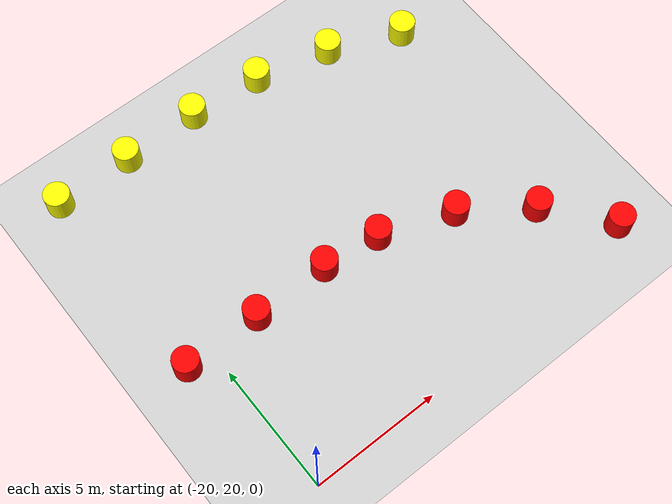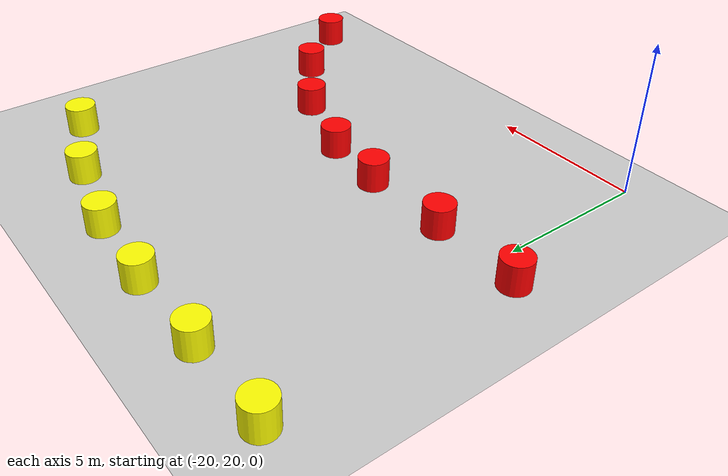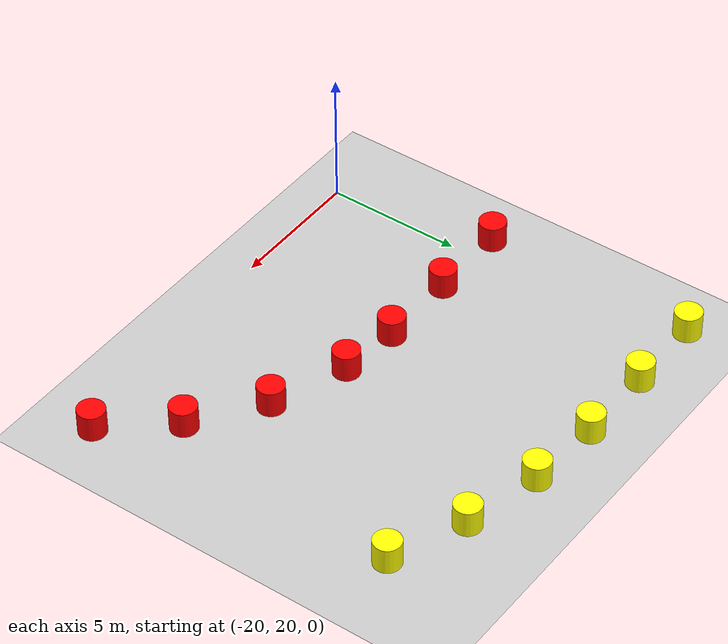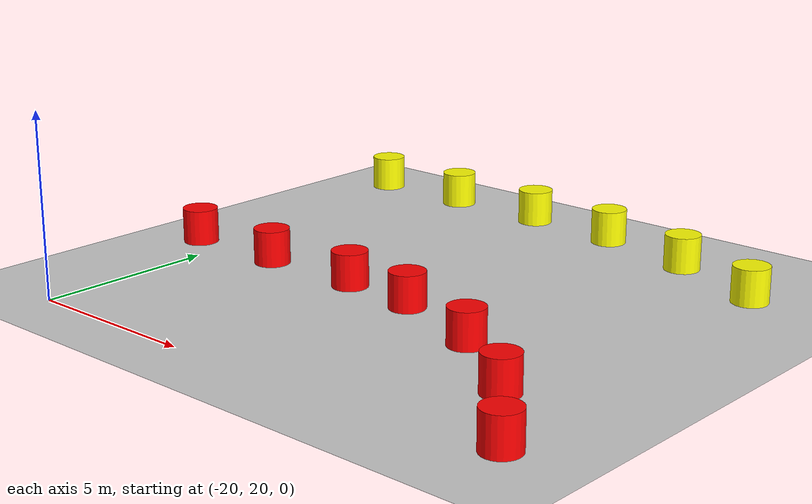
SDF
<sdf version="1.9">
 <world name="empty">
  <model name="ground_plane">
   <static>true</static>
   <link name="link">
    <collision name="collision">
     <geometry><plane><normal>0 0 1</normal><size>1000 1000</size></plane></geometry>
    </collision>
    <visual name="visual">
     <geometry><plane><normal>0 0 1</normal><size>1000 1000</size></plane></geometry>
     <material>
      <ambient>0.8 0.8 0.8 1</ambient>
      <diffuse>0.8 0.8 0.8 1</diffuse>
      <specular>0.8 0.8 0.8 1</specular>
     </material>
    </visual>
    <inertial>
     <mass>1</mass>
     <inertia><ixx>1</ixx><ixy>0</ixy><ixz>0</ixz><iyy>1</iyy><iyz>0</iyz><izz>1</izz></inertia>
    </inertial>
   </link>
  </model>
  <model name="red_cone_8">
   <pose>-5.5961928635129645 20.7068740427449 0.5 0 -0 0</pose>
   <link name="cylinder_link">
    <inertial>
     <inertia>
      <ixx>0.14580000000000001</ixx>
      <ixy>0</ixy>
      <ixz>0</ixz>
      <iyy>0.14580000000000001</iyy>
      <iyz>0</iyz>
      <izz>0.125</izz>
     </inertia>
     <mass>1</mass>
    </inertial>
    <collision name="cylinder_collision">
     <geometry><cylinder><radius>0.5</radius><length>1</length></cylinder></geometry>
    </collision>
    <visual name="cylinder_visual">
     <geometry><cylinder><radius>0.5</radius><length>1</length></cylinder></geometry>
     <material><ambient>1 0 0 1</ambient><diffuse>1 0 0 1</diffuse><specular>1 1 1 1</specular></material>
    </visual>
   </link>
   <static>false</static>
  </model>
  <model name="red_cone_9">
   <pose>-7.480956215316949 23.02894641681081 0.5 0 -0 0</pose>
   <link name="cylinder_link">
    <inertial>
     <inertia>
      <ixx>0.14580000000000001</ixx>
      <ixy>0</ixy>
      <ixz>0</ixz>
      <iyy>0.14580000000000001</iyy>
      <iyz>0</iyz>
      <izz>0.125</izz>
     </inertia>
     <mass>1</mass>
    </inertial>
    <collision name="cylinder_collision">
     <geometry><cylinder><radius>0.5</radius><length>1</length></cylinder></geometry>
    </collision>
    <visual name="cylinder_visual">
     <geometry><cylinder><radius>0.5</radius><length>1</length></cylinder></geometry>
     <material><ambient>1 0 0 1</ambient><diffuse>1 0 0 1</diffuse><specular>1 1 1 1</specular></material>
    </visual>
   </link>
   <static>false</static>
  </model>
  <model name="red_cone_10">
   <pose>-9.921529334501002 24.757516881854016 0.5 0 -0 0</pose>
   <link name="cylinder_link">
    <inertial>
     <inertia>
      <ixx>0.14580000000000001</ixx>
      <ixy>0</ixy>
      <ixz>0</ixz>
      <iyy>0.14580000000000001</iyy>
      <iyz>0</iyz>
      <izz>0.125</izz>
     </inertia>
     <mass>1</mass>
    </inertial>
    <collision name="cylinder_collision">
     <geometry><cylinder><radius>0.5</radius><length>1</length></cylinder></geometry>
    </collision>
    <visual name="cylinder_visual">
     <geometry><cylinder><radius>0.5</radius><length>1</length></cylinder></geometry>
     <material><ambient>1 0 0 1</ambient><diffuse>1 0 0 1</diffuse><specular>1 1 1 1</specular></material>
    </visual>
   </link>
   <static>false</static>
  </model>
  <model name="red_cone_11">
   <pose>-12.737504390429667 25.7648090376316 0.5 0 -0 0</pose>
   <link name="cylinder_link">
    <inertial>
     <inertia>
      <ixx>0.14580000000000001</ixx>
      <ixy>0</ixy>
      <ixz>0</ixz>
      <iyy>0.14580000000000001</iyy>
      <iyz>0</iyz>
      <izz>0.125</izz>
     </inertia>
     <mass>1</mass>
    </inertial>
    <collision name="cylinder_collision">
     <geometry><cylinder><radius>0.5</radius><length>1</length></cylinder></geometry>
    </collision>
    <visual name="cylinder_visual">
     <geometry><cylinder><radius>0.5</radius><length>1</length></cylinder></geometry>
     <material><ambient>1 0 0 1</ambient><diffuse>1 0 0 1</diffuse><specular>1 1 1 1</specular></material>
    </visual>
   </link>
   <static>false</static>
  </model>
  <model name="red_cone_12">
   <pose>-15.0 26.0 0.5 0 -0 0</pose>
   <link name="cylinder_link">
    <inertial>
     <inertia>
      <ixx>0.14580000000000001</ixx>
      <ixy>0</ixy>
      <ixz>0</ixz>
      <iyy>0.14580000000000001</iyy>
      <iyz>0</iyz>
      <izz>0.125</izz>
     </inertia>
     <mass>1</mass>
    </inertial>
    <collision name="cylinder_collision">
     <geometry><cylinder><radius>0.5</radius><length>1</length></cylinder></geometry>
    </collision>
    <visual name="cylinder_visual">
     <geometry><cylinder><radius>0.5</radius><length>1</length></cylinder></geometry>
     <material><ambient>1 0 0 1</ambient><diffuse>1 0 0 1</diffuse><specular>1 1 1 1</specular></material>
    </visual>
   </link>
   <static>false</static>
  </model>
  <model name="red_cone_13">
   <pose>-18.0 26.0 0.5 0 -0 0</pose>
   <link name="cylinder_link">
    <inertial>
     <inertia>
      <ixx>0.14580000000000001</ixx>
      <ixy>0</ixy>
      <ixz>0</ixz>
      <iyy>0.14580000000000001</iyy>
      <iyz>0</iyz>
      <izz>0.125</izz>
     </inertia>
     <mass>1</mass>
    </inertial>
    <collision name="cylinder_collision">
     <geometry><cylinder><radius>0.5</radius><length>1</length></cylinder></geometry>
    </collision>
    <visual name="cylinder_visual">
     <geometry><cylinder><radius>0.5</radius><length>1</length></cylinder></geometry>
     <material><ambient>1 0 0 1</ambient><diffuse>1 0 0 1</diffuse><specular>1 1 1 1</specular></material>
    </visual>
   </link>
   <static>false</static>
  </model>
  <model name="red_cone_14">
   <pose>-21.0 26.0 0.5 0 -0 0</pose>
   <link name="cylinder_link">
    <inertial>
     <inertia>
      <ixx>0.14580000000000001</ixx>
      <ixy>0</ixy>
      <ixz>0</ixz>
      <iyy>0.14580000000000001</iyy>
      <iyz>0</iyz>
      <izz>0.125</izz>
     </inertia>
     <mass>1</mass>
    </inertial>
    <collision name="cylinder_collision">
     <geometry><cylinder><radius>0.5</radius><length>1</length></cylinder></geometry>
    </collision>
    <visual name="cylinder_visual">
     <geometry><cylinder><radius>0.5</radius><length>1</length></cylinder></geometry>
     <material><ambient>1 0 0 1</ambient><diffuse>1 0 0 1</diffuse><specular>1 1 1 1</specular></material>
    </visual>
   </link>
   <static>false</static>
  </model>
  <model name="yellow_cone_13">
   <pose>-6.470913384592498 31.978064716182367 0.5 0 -0 0</pose>
   <link name="cylinder_link">
    <inertial>
     <inertia>
      <ixx>0.14580000000000001</ixx>
      <ixy>0</ixy>
      <ixz>0</ixz>
      <iyy>0.14580000000000001</iyy>
      <iyz>0</iyz>
      <izz>0.125</izz>
     </inertia>
     <mass>1</mass>
    </inertial>
    <collision name="cylinder_collision">
     <geometry><cylinder><radius>0.5</radius><length>1</length></cylinder></geometry>
    </collision>
    <visual name="cylinder_visual">
     <geometry><cylinder><radius>0.5</radius><length>1</length></cylinder></geometry>
     <material><ambient>1 1 0 1</ambient><diffuse>1 1 0 1</diffuse><specular>1 1 1 1</specular></material>
    </visual>
   </link>
   <static>false</static>
  </model>
  <model name="yellow_cone_14">
   <pose>-9.246633038466769 33.107975276268135 0.5 0 -0 0</pose>
   <link name="cylinder_link">
    <inertial>
     <inertia>
      <ixx>0.14580000000000001</ixx>
      <ixy>0</ixy>
      <ixz>0</ixz>
      <iyy>0.14580000000000001</iyy>
      <iyz>0</iyz>
      <izz>0.125</izz>
     </inertia>
     <mass>1</mass>
    </inertial>
    <collision name="cylinder_collision">
     <geometry><cylinder><radius>0.5</radius><length>1</length></cylinder></geometry>
    </collision>
    <visual name="cylinder_visual">
     <geometry><cylinder><radius>0.5</radius><length>1</length></cylinder></geometry>
     <material><ambient>1 1 0 1</ambient><diffuse>1 1 0 1</diffuse><specular>1 1 1 1</specular></material>
    </visual>
   </link>
   <static>false</static>
  </model>
  <model name="yellow_cone_15">
   <pose>-12.165490684604064 33.78737759616636 0.5 0 -0 0</pose>
   <link name="cylinder_link">
    <inertial>
     <inertia>
      <ixx>0.14580000000000001</ixx>
      <ixy>0</ixy>
      <ixz>0</ixz>
      <iyy>0.14580000000000001</iyy>
      <iyz>0</iyz>
      <izz>0.125</izz>
     </inertia>
     <mass>1</mass>
    </inertial>
    <collision name="cylinder_collision">
     <geometry><cylinder><radius>0.5</radius><length>1</length></cylinder></geometry>
    </collision>
    <visual name="cylinder_visual">
     <geometry><cylinder><radius>0.5</radius><length>1</length></cylinder></geometry>
     <material><ambient>1 1 0 1</ambient><diffuse>1 1 0 1</diffuse><specular>1 1 1 1</specular></material>
    </visual>
   </link>
   <static>false</static>
  </model>
  <model name="yellow_cone_16">
   <pose>-14.999999999999998 34.0 0.5 0 -0 0</pose>
   <link name="cylinder_link">
    <inertial>
     <inertia>
      <ixx>0.14580000000000001</ixx>
      <ixy>0</ixy>
      <ixz>0</ixz>
      <iyy>0.14580000000000001</iyy>
      <iyz>0</iyz>
      <izz>0.125</izz>
     </inertia>
     <mass>1</mass>
    </inertial>
    <collision name="cylinder_collision">
     <geometry><cylinder><radius>0.5</radius><length>1</length></cylinder></geometry>
    </collision>
    <visual name="cylinder_visual">
     <geometry><cylinder><radius>0.5</radius><length>1</length></cylinder></geometry>
     <material><ambient>1 1 0 1</ambient><diffuse>1 1 0 1</diffuse><specular>1 1 1 1</specular></material>
    </visual>
   </link>
   <static>false</static>
  </model>
  <model name="yellow_cone_17">
   <pose>-18.0 34.0 0.5 0 -0 0</pose>
   <link name="cylinder_link">
    <inertial>
     <inertia>
      <ixx>0.14580000000000001</ixx>
      <ixy>0</ixy>
      <ixz>0</ixz>
      <iyy>0.14580000000000001</iyy>
      <iyz>0</iyz>
      <izz>0.125</izz>
     </inertia>
     <mass>1</mass>
    </inertial>
    <collision name="cylinder_collision">
     <geometry><cylinder><radius>0.5</radius><length>1</length></cylinder></geometry>
    </collision>
    <visual name="cylinder_visual">
     <geometry><cylinder><radius>0.5</radius><length>1</length></cylinder></geometry>
     <material><ambient>1 1 0 1</ambient><diffuse>1 1 0 1</diffuse><specular>1 1 1 1</specular></material>
    </visual>
   </link>
   <static>false</static>
  </model>
  <model name="yellow_cone_18">
   <pose>-21.0 34.0 0.5 0 -0 0</pose>
   <link name="cylinder_link">
    <inertial>
     <inertia>
      <ixx>0.14580000000000001</ixx>
      <ixy>0</ixy>
      <ixz>0</ixz>
      <iyy>0.14580000000000001</iyy>
      <iyz>0</iyz>
      <izz>0.125</izz>
     </inertia>
     <mass>1</mass>
    </inertial>
    <collision name="cylinder_collision">
     <geometry><cylinder><radius>0.5</radius><length>1</length></cylinder></geometry>
    </collision>
    <visual name="cylinder_visual">
     <geometry><cylinder><radius>0.5</radius><length>1</length></cylinder></geometry>
     <material><ambient>1 1 0 1</ambient><diffuse>1 1 0 1</diffuse><specular>1 1 1 1</specular></material>
    </visual>
   </link>
   <static>false</static>
  </model>
 </world>
</sdf>
